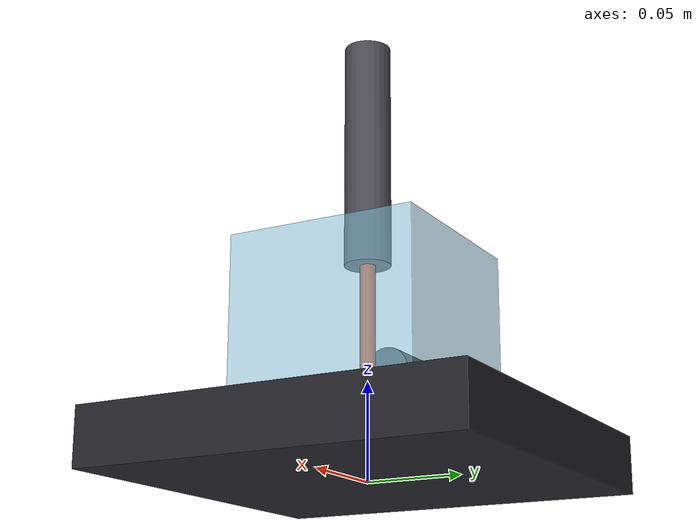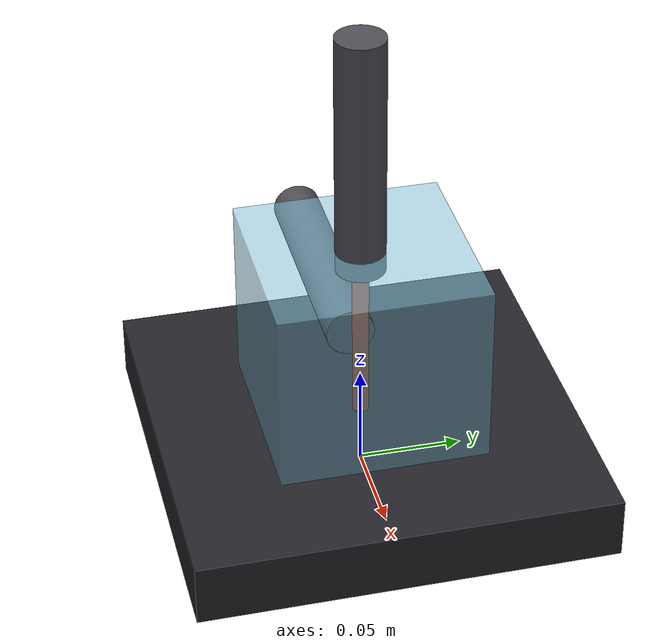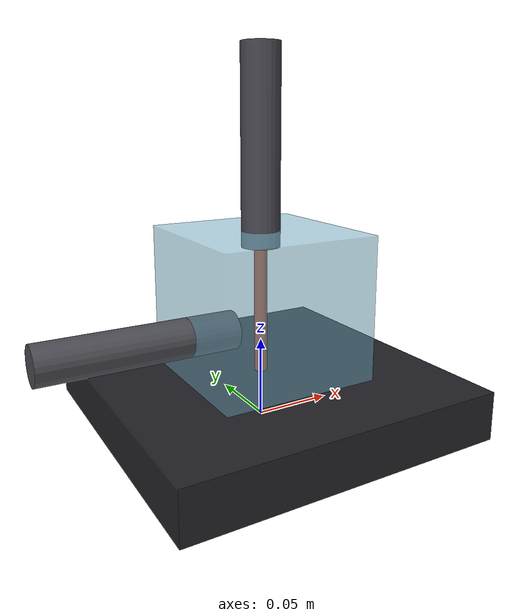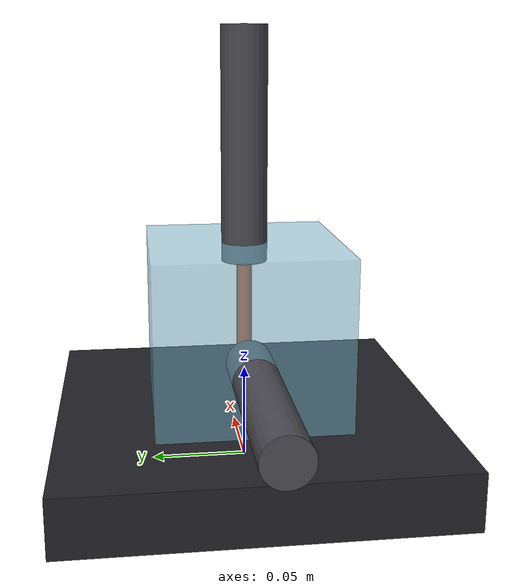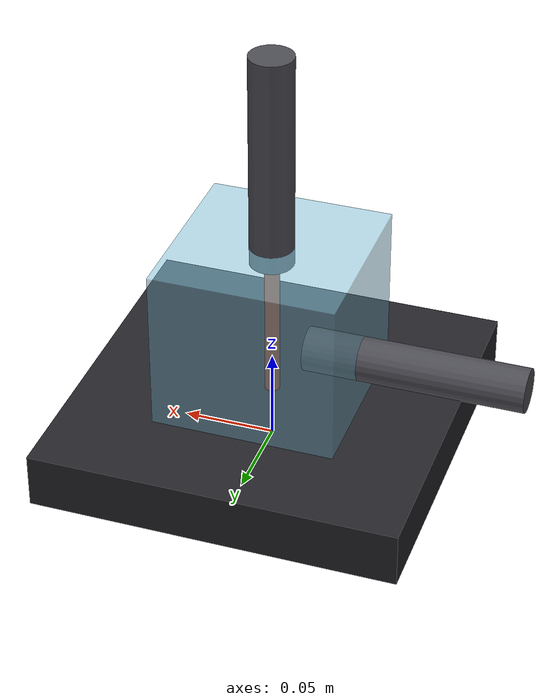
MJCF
<?xml version="1.0" encoding="utf-8"?>
<mujoco model="real_lab_unc_lightsheet">
  <compiler angle="radian" autolimits="true"/>
  <default>
    <default class="body"><geom contype="1" conaffinity="1"/></default>
  </default>
  <worldbody>
    <body name="base">
      <geom type="box" size="0.1 0.1 0.015" pos="0 0 0.015" rgba="0.14 0.14 0.16 1" class="body"/>
      <geom type="box" size="0.05 0.05 0.045" pos="0 0 0.075" rgba="0.5 0.75 0.85 0.55" class="body"/>
      <geom type="cylinder" size="0.012 0.06" pos="-0.08 0 0.06" rgba="0.3 0.3 0.33 1" class="body" quat="0.707 0 0.707 0"/>
      <geom type="cylinder" size="0.012 0.06" pos="0 0 0.17" rgba="0.3 0.3 0.33 1" class="body"/>
      <body name="sample_mount" pos="0.0 0.0 0.14">
        <joint name="sample_mount_joint" type="slide" axis="0 0 1" range="-0.03 0.03" damping="0.8" frictionloss="0.3"/>
  <geom type="cylinder" size="0.004 0.07" pos="0 0 -0.06" rgba="0.85 0.3 0.1 1" class="body"/>
      </body>
    </body>
  </worldbody>
</mujoco>
